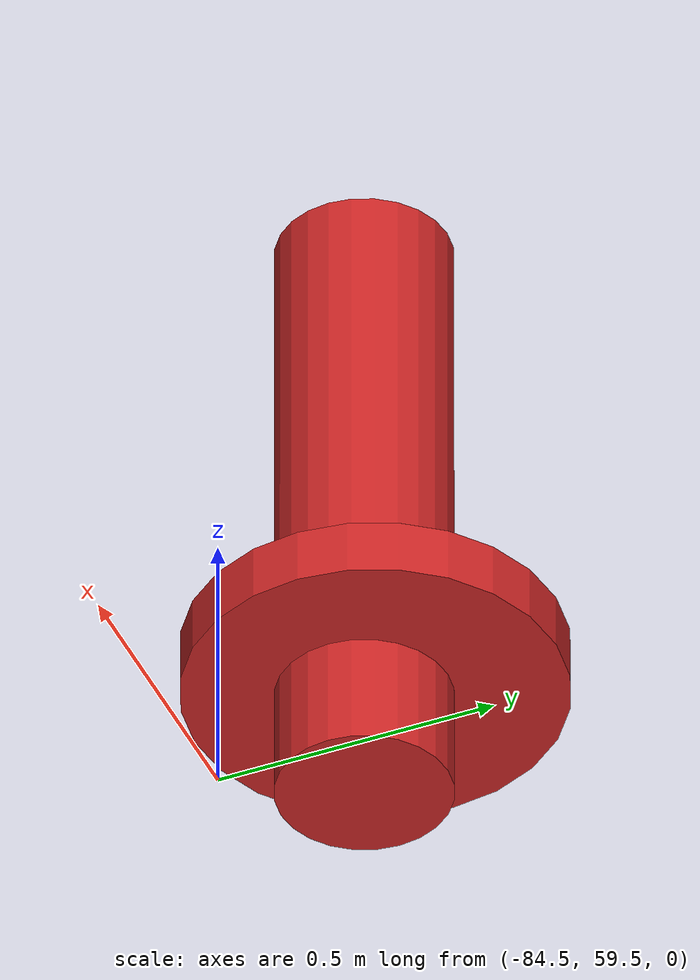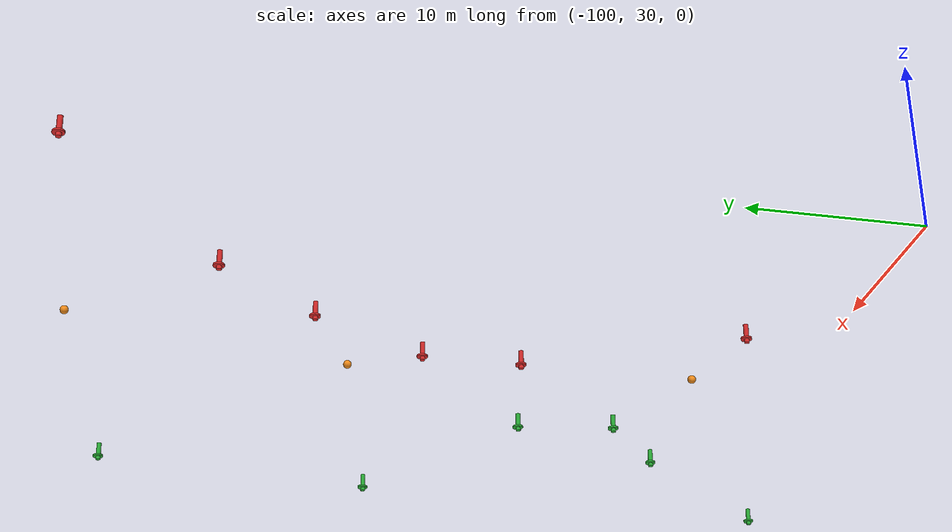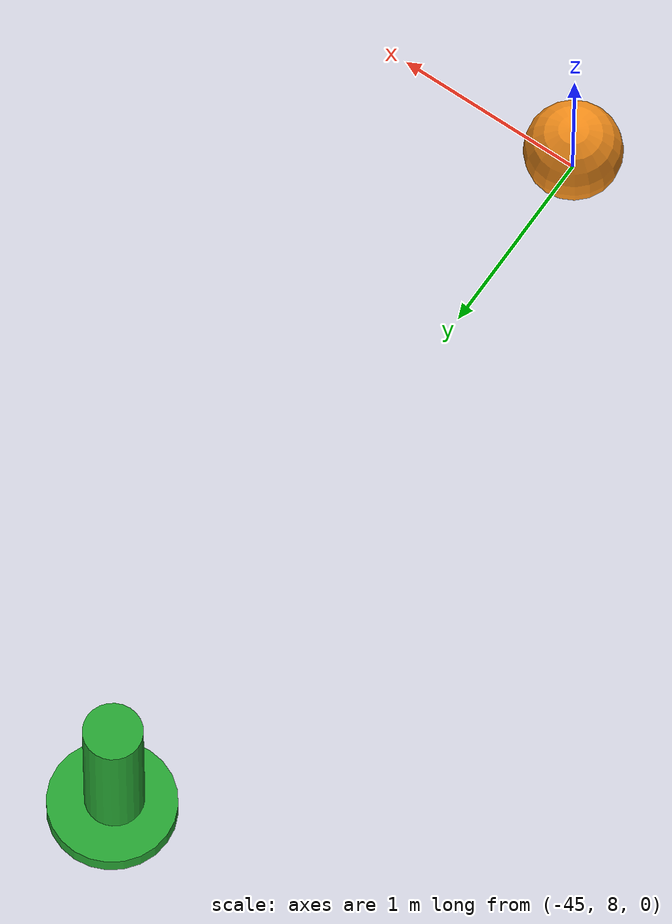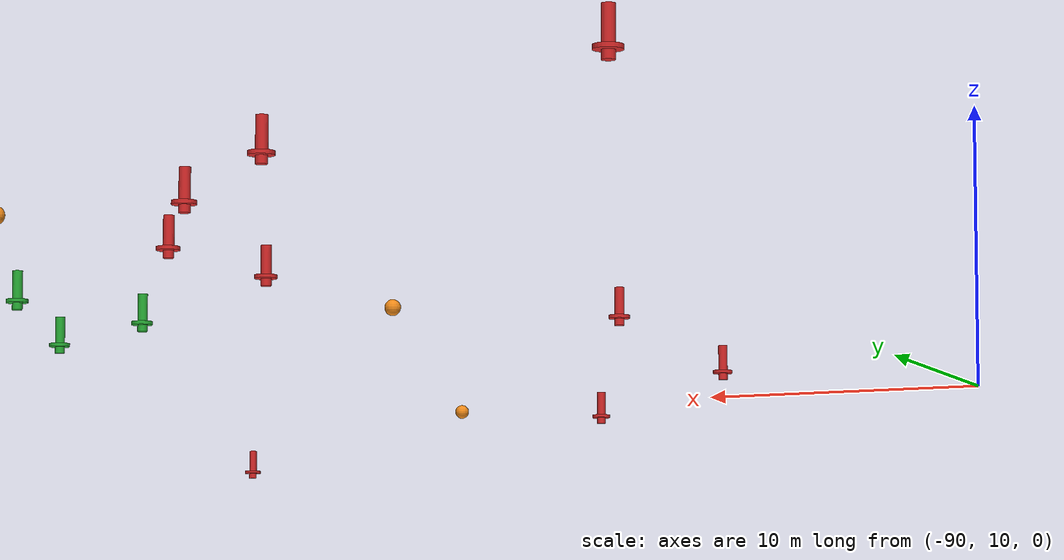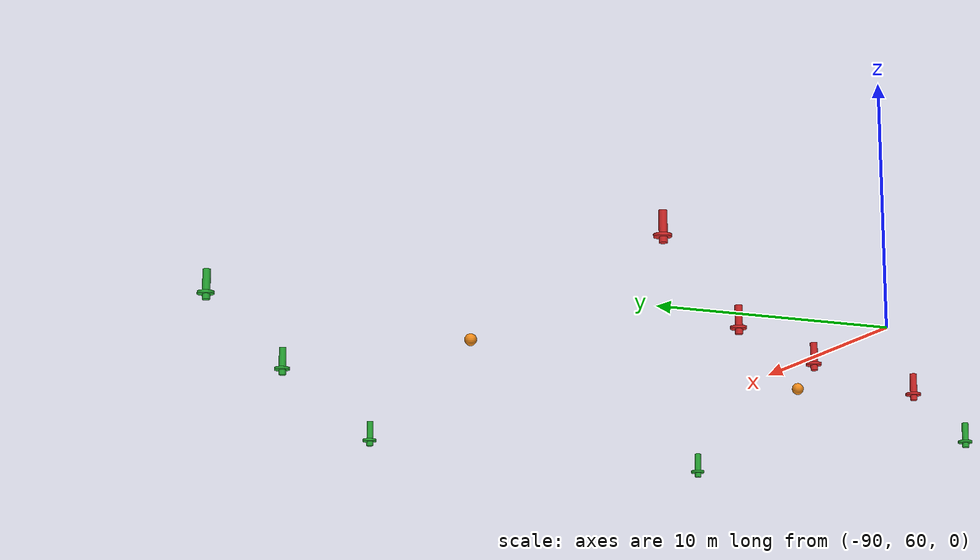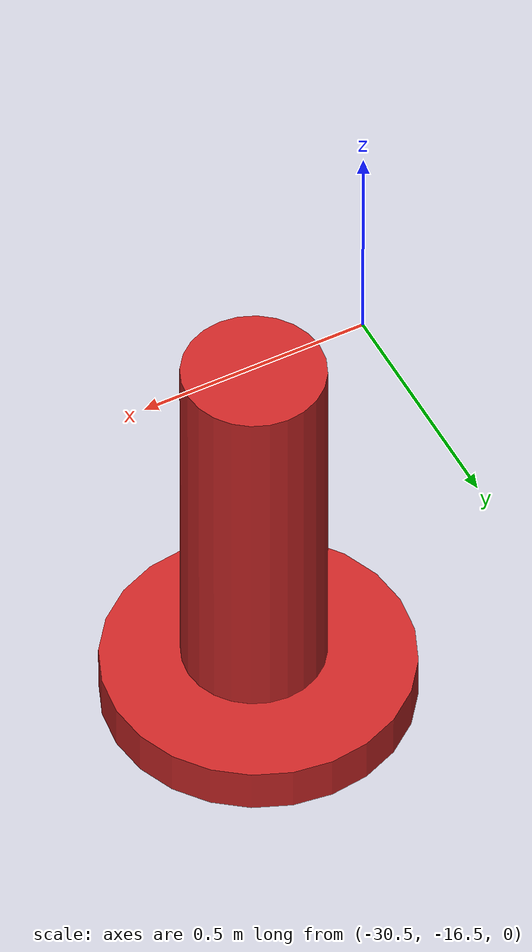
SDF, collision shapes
<?xml version="1.0"?>
<!-- Model for the short navigation course -->
<sdf version="1.6">
  <model name="short_navigation_course_0">

    <!-- Path -->

    <include>
      <name>red_buoy_0</name>
      <pose>0 -20 0 0 0 0</pose>
      <uri>https://fuel.gazebosim.org/1.0/openrobotics/models/mb_marker_buoy_red</uri>

      <plugin name="vrx::PolyhedraBuoyancyDrag"
              filename="libPolyhedraBuoyancyDrag.so">
        <fluid_density>1000</fluid_density>
        <fluid_level>0.0</fluid_level>
        <linear_drag>25.0</linear_drag>
        <angular_drag>2.0</angular_drag>
        <buoyancy name="collision_outer">
          <link_name>link</link_name>
          <pose>0 0 -0.3 0 0 0</pose>
          <geometry>
            <cylinder>
              <radius>0.325</radius>
              <length>0.1</length>
            </cylinder>
          </geometry>
        </buoyancy>
        <wavefield>
          <topic>/vrx/wavefield/parameters</topic>
        </wavefield>
      </plugin>

    </include>

    <include>
      <name>red_buoy_1</name>
      <pose>-30 -16 0 0 0 0</pose>
      <uri>https://fuel.gazebosim.org/1.0/openrobotics/models/mb_marker_buoy_red</uri>

      <plugin name="vrx::PolyhedraBuoyancyDrag"
              filename="libPolyhedraBuoyancyDrag.so">
        <fluid_density>1000</fluid_density>
        <fluid_level>0.0</fluid_level>
        <linear_drag>25.0</linear_drag>
        <angular_drag>2.0</angular_drag>
        <buoyancy name="collision_outer">
          <link_name>link</link_name>
          <pose>0 0 -0.3 0 0 0</pose>
          <geometry>
            <cylinder>
              <radius>0.325</radius>
              <length>0.1</length>
            </cylinder>
          </geometry>
        </buoyancy>
        <wavefield>
          <topic>/vrx/wavefield/parameters</topic>
        </wavefield>
      </plugin>

    </include>

    <include>
      <name>red_buoy_2</name>
      <pose>-53 -8 0 0 0 0</pose>
      <uri>https://fuel.gazebosim.org/1.0/openrobotics/models/mb_marker_buoy_red</uri>

      <plugin name="vrx::PolyhedraBuoyancyDrag"
              filename="libPolyhedraBuoyancyDrag.so">
        <fluid_density>1000</fluid_density>
        <fluid_level>0.0</fluid_level>
        <linear_drag>25.0</linear_drag>
        <angular_drag>2.0</angular_drag>
        <buoyancy name="collision_outer">
          <link_name>link</link_name>
          <pose>0 0 -0.3 0 0 0</pose>
          <geometry>
            <cylinder>
              <radius>0.325</radius>
              <length>0.1</length>
            </cylinder>
          </geometry>
        </buoyancy>
        <wavefield>
          <topic>/vrx/wavefield/parameters</topic>
        </wavefield>
      </plugin>

    </include>

    <include>
      <name>red_buoy_3</name>
      <pose>-75 8 0 0 0 0</pose>
      <uri>https://fuel.gazebosim.org/1.0/openrobotics/models/mb_marker_buoy_red</uri>

      <plugin name="vrx::PolyhedraBuoyancyDrag"
              filename="libPolyhedraBuoyancyDrag.so">
        <fluid_density>1000</fluid_density>
        <fluid_level>0.0</fluid_level>
        <linear_drag>25.0</linear_drag>
        <angular_drag>2.0</angular_drag>
        <buoyancy name="collision_outer">
          <link_name>link</link_name>
          <pose>0 0 -0.3 0 0 0</pose>
          <geometry>
            <cylinder>
              <radius>0.325</radius>
              <length>0.1</length>
            </cylinder>
          </geometry>
        </buoyancy>
        <wavefield>
          <topic>/vrx/wavefield/parameters</topic>
        </wavefield>
      </plugin>

    </include>

    <include>
      <name>red_buoy_4</name>
      <pose>-84 20 0 0 0 0</pose>
      <uri>https://fuel.gazebosim.org/1.0/openrobotics/models/mb_marker_buoy_red</uri>

      <plugin name="vrx::PolyhedraBuoyancyDrag"
              filename="libPolyhedraBuoyancyDrag.so">
        <fluid_density>1000</fluid_density>
        <fluid_level>0.0</fluid_level>
        <linear_drag>25.0</linear_drag>
        <angular_drag>2.0</angular_drag>
        <buoyancy name="collision_outer">
          <link_name>link</link_name>
          <pose>0 0 -0.3 0 0 0</pose>
          <geometry>
            <cylinder>
              <radius>0.325</radius>
              <length>0.1</length>
            </cylinder>
          </geometry>
        </buoyancy>
        <wavefield>
          <topic>/vrx/wavefield/parameters</topic>
        </wavefield>
      </plugin>

    </include>

    <include>
      <name>red_buoy_5</name>
      <pose>-86 35 0 0 0 0</pose>
      <uri>https://fuel.gazebosim.org/1.0/openrobotics/models/mb_marker_buoy_red</uri>

      <plugin name="vrx::PolyhedraBuoyancyDrag"
              filename="libPolyhedraBuoyancyDrag.so">
        <fluid_density>1000</fluid_density>
        <fluid_level>0.0</fluid_level>
        <linear_drag>25.0</linear_drag>
        <angular_drag>2.0</angular_drag>
        <buoyancy name="collision_outer">
          <link_name>link</link_name>
          <pose>0 0 -0.3 0 0 0</pose>
          <geometry>
            <cylinder>
              <radius>0.325</radius>
              <length>0.1</length>
            </cylinder>
          </geometry>
        </buoyancy>
        <wavefield>
          <topic>/vrx/wavefield/parameters</topic>
        </wavefield>
      </plugin>

    </include>

    <include>
      <name>red_buoy_6</name>
      <pose>-80 53 0 0 0 0</pose>
      <uri>https://fuel.gazebosim.org/1.0/openrobotics/models/mb_marker_buoy_red</uri>

      <plugin name="vrx::PolyhedraBuoyancyDrag"
              filename="libPolyhedraBuoyancyDrag.so">
        <fluid_density>1000</fluid_density>
        <fluid_level>0.0</fluid_level>
        <linear_drag>25.0</linear_drag>
        <angular_drag>2.0</angular_drag>
        <buoyancy name="collision_outer">
          <link_name>link</link_name>
          <pose>0 0 -0.3 0 0 0</pose>
          <geometry>
            <cylinder>
              <radius>0.325</radius>
              <length>0.1</length>
            </cylinder>
          </geometry>
        </buoyancy>
        <wavefield>
          <topic>/vrx/wavefield/parameters</topic>
        </wavefield>
      </plugin>

    </include>

    <include>
      <name>red_buoy_7</name>
      <pose>-89 66 0 0 0 0</pose>
      <uri>https://fuel.gazebosim.org/1.0/openrobotics/models/mb_marker_buoy_red</uri>

      <plugin name="vrx::PolyhedraBuoyancyDrag"
              filename="libPolyhedraBuoyancyDrag.so">
        <fluid_density>1000</fluid_density>
        <fluid_level>0.0</fluid_level>
        <linear_drag>25.0</linear_drag>
        <angular_drag>2.0</angular_drag>
        <buoyancy name="collision_outer">
          <link_name>link</link_name>
          <pose>0 0 -0.3 0 0 0</pose>
          <geometry>
            <cylinder>
              <radius>0.325</radius>
              <length>0.1</length>
            </cylinder>
          </geometry>
        </buoyancy>
        <wavefield>
          <topic>/vrx/wavefield/parameters</topic>
        </wavefield>
      </plugin>

    </include>

    <include>
      <name>red_buoy_8</name>
      <pose>-101 75 0 0 0 0</pose>
      <uri>https://fuel.gazebosim.org/1.0/openrobotics/models/mb_marker_buoy_red</uri>

      <plugin name="vrx::PolyhedraBuoyancyDrag"
              filename="libPolyhedraBuoyancyDrag.so">
        <fluid_density>1000</fluid_density>
        <fluid_level>0.0</fluid_level>
        <linear_drag>25.0</linear_drag>
        <angular_drag>2.0</angular_drag>
        <buoyancy name="collision_outer">
          <link_name>link</link_name>
          <pose>0 0 -0.3 0 0 0</pose>
          <geometry>
            <cylinder>
              <radius>0.325</radius>
              <length>0.1</length>
            </cylinder>
          </geometry>
        </buoyancy>
        <wavefield>
          <topic>/vrx/wavefield/parameters</topic>
        </wavefield>
      </plugin>

    </include>

    <include>
      <name>red_buoy_9</name>
      <pose>-84 60 0 0 0 0</pose>
      <uri>https://fuel.gazebosim.org/1.0/openrobotics/models/mb_marker_buoy_red</uri>

      <plugin name="vrx::PolyhedraBuoyancyDrag"
              filename="libPolyhedraBuoyancyDrag.so">
        <fluid_density>1000</fluid_density>
        <fluid_level>0.0</fluid_level>
        <linear_drag>25.0</linear_drag>
        <angular_drag>2.0</angular_drag>
        <buoyancy name="collision_outer">
          <link_name>link</link_name>
          <pose>0 0 -0.3 0 0 0</pose>
          <geometry>
            <cylinder>
              <radius>0.325</radius>
              <length>0.1</length>
            </cylinder>
          </geometry>
        </buoyancy>
        <wavefield>
          <topic>/vrx/wavefield/parameters</topic>
        </wavefield>
      </plugin>

    </include>

    <include>
      <name>red_buoy_10</name>
      <pose>-80 47   0 0 0 0</pose>
      <uri>https://fuel.gazebosim.org/1.0/openrobotics/models/mb_marker_buoy_red</uri>

      <plugin name="vrx::PolyhedraBuoyancyDrag"
              filename="libPolyhedraBuoyancyDrag.so">
        <fluid_density>1000</fluid_density>
        <fluid_level>0.0</fluid_level>
        <linear_drag>25.0</linear_drag>
        <angular_drag>2.0</angular_drag>
        <buoyancy name="collision_outer">
          <link_name>link</link_name>
          <pose>0 0 -0.3 0 0 0</pose>
          <geometry>
            <cylinder>
              <radius>0.325</radius>
              <length>0.1</length>
            </cylinder>
          </geometry>
        </buoyancy>
        <wavefield>
          <topic>/vrx/wavefield/parameters</topic>
        </wavefield>
      </plugin>

    </include>

     <include>
      <name>green_buoy_0</name>
      <pose>0 0 0 0 0 0</pose>
      <uri>https://fuel.gazebosim.org/1.0/openrobotics/models/mb_marker_buoy_green</uri>

      <plugin name="vrx::PolyhedraBuoyancyDrag"
              filename="libPolyhedraBuoyancyDrag.so">
        <fluid_density>1000</fluid_density>
        <fluid_level>0.0</fluid_level>
        <linear_drag>25.0</linear_drag>
        <angular_drag>2.0</angular_drag>
        <buoyancy name="collision_outer">
          <link_name>link</link_name>
          <pose>0 0 -0.3 0 0 0</pose>
          <geometry>
            <cylinder>
              <radius>0.325</radius>
              <length>0.1</length>
            </cylinder>
          </geometry>
        </buoyancy>
        <wavefield>
          <topic>/vrx/wavefield/parameters</topic>
        </wavefield>
      </plugin>

    </include>

    <include>
      <name>green_buoy_1</name>
      <pose>-29 4 0 0 0 0</pose>
      <uri>https://fuel.gazebosim.org/1.0/openrobotics/models/mb_marker_buoy_green</uri>

      <plugin name="vrx::PolyhedraBuoyancyDrag"
              filename="libPolyhedraBuoyancyDrag.so">
        <fluid_density>1000</fluid_density>
        <fluid_level>0.0</fluid_level>
        <linear_drag>25.0</linear_drag>
        <angular_drag>2.0</angular_drag>
        <buoyancy name="collision_outer">
          <link_name>link</link_name>
          <pose>0 0 -0.3 0 0 0</pose>
          <geometry>
            <cylinder>
              <radius>0.325</radius>
              <length>0.1</length>
            </cylinder>
          </geometry>
        </buoyancy>
        <wavefield>
          <topic>/vrx/wavefield/parameters</topic>
        </wavefield>
      </plugin>

    </include>

    <include>
      <name>green_buoy_2</name>
      <pose>-45 12 0 0 0 0</pose>
      <uri>https://fuel.gazebosim.org/1.0/openrobotics/models/mb_marker_buoy_green</uri>

      <plugin name="vrx::PolyhedraBuoyancyDrag"
              filename="libPolyhedraBuoyancyDrag.so">
        <fluid_density>1000</fluid_density>
        <fluid_level>0.0</fluid_level>
        <linear_drag>25.0</linear_drag>
        <angular_drag>2.0</angular_drag>
        <buoyancy name="collision_outer">
          <link_name>link</link_name>
          <pose>0 0 -0.3 0 0 0</pose>
          <geometry>
            <cylinder>
              <radius>0.325</radius>
              <length>0.1</length>
            </cylinder>
          </geometry>
        </buoyancy>
        <wavefield>
          <topic>/vrx/wavefield/parameters</topic>
        </wavefield>
      </plugin>

    </include>

    <include>
      <name>green_buoy_3</name>
      <pose>-58 25 0 0 0 0</pose>
      <uri>https://fuel.gazebosim.org/1.0/openrobotics/models/mb_marker_buoy_green</uri>

      <plugin name="vrx::PolyhedraBuoyancyDrag"
              filename="libPolyhedraBuoyancyDrag.so">
        <fluid_density>1000</fluid_density>
        <fluid_level>0.0</fluid_level>
        <linear_drag>25.0</linear_drag>
        <angular_drag>2.0</angular_drag>
        <buoyancy name="collision_outer">
          <link_name>link</link_name>
          <pose>0 0 -0.3 0 0 0</pose>
          <geometry>
            <cylinder>
              <radius>0.325</radius>
              <length>0.1</length>
            </cylinder>
          </geometry>
        </buoyancy>
        <wavefield>
          <topic>/vrx/wavefield/parameters</topic>
        </wavefield>
      </plugin>

    </include>

    <include>
      <name>green_buoy_4</name>
      <pose>-67 35 0 0 0 0</pose>
      <uri>https://fuel.gazebosim.org/1.0/openrobotics/models/mb_marker_buoy_green</uri>

      <plugin name="vrx::PolyhedraBuoyancyDrag"
              filename="libPolyhedraBuoyancyDrag.so">
        <fluid_density>1000</fluid_density>
        <fluid_level>0.0</fluid_level>
        <linear_drag>25.0</linear_drag>
        <angular_drag>2.0</angular_drag>
        <buoyancy name="collision_outer">
          <link_name>link</link_name>
          <pose>0 0 -0.3 0 0 0</pose>
          <geometry>
            <cylinder>
              <radius>0.325</radius>
              <length>0.1</length>
            </cylinder>
          </geometry>
        </buoyancy>
        <wavefield>
          <topic>/vrx/wavefield/parameters</topic>
        </wavefield>
      </plugin>

    </include>

    <include>
      <name>green_buoy_5</name>
      <pose>-59 53 0 0 0 0</pose>
      <uri>https://fuel.gazebosim.org/1.0/openrobotics/models/mb_marker_buoy_green</uri>

      <plugin name="vrx::PolyhedraBuoyancyDrag"
              filename="libPolyhedraBuoyancyDrag.so">
        <fluid_density>1000</fluid_density>
        <fluid_level>0.0</fluid_level>
        <linear_drag>25.0</linear_drag>
        <angular_drag>2.0</angular_drag>
        <buoyancy name="collision_outer">
          <link_name>link</link_name>
          <pose>0 0 -0.3 0 0 0</pose>
          <geometry>
            <cylinder>
              <radius>0.325</radius>
              <length>0.1</length>
            </cylinder>
          </geometry>
        </buoyancy>
        <wavefield>
          <topic>/vrx/wavefield/parameters</topic>
        </wavefield>
      </plugin>

    </include>

    <include>
      <name>green_buoy_6</name>
      <pose>-61 71 0 0 0 0</pose>
      <uri>https://fuel.gazebosim.org/1.0/openrobotics/models/mb_marker_buoy_green</uri>

      <plugin name="vrx::PolyhedraBuoyancyDrag"
              filename="libPolyhedraBuoyancyDrag.so">
        <fluid_density>1000</fluid_density>
        <fluid_level>0.0</fluid_level>
        <linear_drag>25.0</linear_drag>
        <angular_drag>2.0</angular_drag>
        <buoyancy name="collision_outer">
          <link_name>link</link_name>
          <pose>0 0 -0.3 0 0 0</pose>
          <geometry>
            <cylinder>
              <radius>0.325</radius>
              <length>0.1</length>
            </cylinder>
          </geometry>
        </buoyancy>
        <wavefield>
          <topic>/vrx/wavefield/parameters</topic>
        </wavefield>
      </plugin>

    </include>

    <include>
      <name>green_buoy_7</name>
      <pose>-75 80 0 0 0 0</pose>
      <uri>https://fuel.gazebosim.org/1.0/openrobotics/models/mb_marker_buoy_green</uri>

      <plugin name="vrx::PolyhedraBuoyancyDrag"
              filename="libPolyhedraBuoyancyDrag.so">
        <fluid_density>1000</fluid_density>
        <fluid_level>0.0</fluid_level>
        <linear_drag>25.0</linear_drag>
        <angular_drag>2.0</angular_drag>
        <buoyancy name="collision_outer">
          <link_name>link</link_name>
          <pose>0 0 -0.3 0 0 0</pose>
          <geometry>
            <cylinder>
              <radius>0.325</radius>
              <length>0.1</length>
            </cylinder>
          </geometry>
        </buoyancy>
        <wavefield>
          <topic>/vrx/wavefield/parameters</topic>
        </wavefield>
      </plugin>

    </include>

    <include>
      <name>green_buoy_8</name>
      <pose>-87 87 0 0 0 0</pose>
      <uri>https://fuel.gazebosim.org/1.0/openrobotics/models/mb_marker_buoy_green</uri>

      <plugin name="vrx::PolyhedraBuoyancyDrag"
              filename="libPolyhedraBuoyancyDrag.so">
        <fluid_density>1000</fluid_density>
        <fluid_level>0.0</fluid_level>
        <linear_drag>25.0</linear_drag>
        <angular_drag>2.0</angular_drag>
        <buoyancy name="collision_outer">
          <link_name>link</link_name>
          <pose>0 0 -0.3 0 0 0</pose>
          <geometry>
            <cylinder>
              <radius>0.325</radius>
              <length>0.1</length>
            </cylinder>
          </geometry>
        </buoyancy>
        <wavefield>
          <topic>/vrx/wavefield/parameters</topic>
        </wavefield>
      </plugin>

    </include>

    <include>
      <name>green_buoy_9</name>
      <pose>-72 39 0 0 0 0</pose>
      <uri>https://fuel.gazebosim.org/1.0/openrobotics/models/mb_marker_buoy_green</uri>

      <plugin name="vrx::PolyhedraBuoyancyDrag"
              filename="libPolyhedraBuoyancyDrag.so">
        <fluid_density>1000</fluid_density>
        <fluid_level>0.0</fluid_level>
        <linear_drag>25.0</linear_drag>
        <angular_drag>2.0</angular_drag>
        <buoyancy name="collision_outer">
          <link_name>link</link_name>
          <pose>0 0 -0.3 0 0 0</pose>
          <geometry>
            <cylinder>
              <radius>0.325</radius>
              <length>0.1</length>
            </cylinder>
          </geometry>
        </buoyancy>
        <wavefield>
          <topic>/vrx/wavefield/parameters</topic>
        </wavefield>
      </plugin>

    </include>

    <include>
      <name>green_buoy_10</name>
      <pose>-71 45 0 0 0 0</pose>
      <uri>https://fuel.gazebosim.org/1.0/openrobotics/models/mb_marker_buoy_green</uri>

      <plugin name="vrx::PolyhedraBuoyancyDrag"
              filename="libPolyhedraBuoyancyDrag.so">
        <fluid_density>1000</fluid_density>
        <fluid_level>0.0</fluid_level>
        <linear_drag>25.0</linear_drag>
        <angular_drag>2.0</angular_drag>
        <buoyancy name="collision_outer">
          <link_name>link</link_name>
          <pose>0 0 -0.3 0 0 0</pose>
          <geometry>
            <cylinder>
              <radius>0.325</radius>
              <length>0.1</length>
            </cylinder>
          </geometry>
        </buoyancy>
        <wavefield>
          <topic>/vrx/wavefield/parameters</topic>
        </wavefield>
      </plugin>

    </include>

    <include>
      <name>yellow_obstacle_0</name>
      <pose>-45 8 0.2 0 0 0</pose>
      <uri>https://fuel.gazebosim.org/1.0/openrobotics/models/mb_round_buoy_orange</uri>
      <plugin name="vrx::PolyhedraBuoyancyDrag"
              filename="libPolyhedraBuoyancyDrag.so">
        <fluid_density>1000</fluid_density>
        <fluid_level>0.0</fluid_level>
        <linear_drag>25.0</linear_drag>
        <angular_drag>2.0</angular_drag>
        <buoyancy name="collision_outer">
          <link_name>link</link_name>
          <pose>0 0 -0.3 0 0 0</pose>
          <geometry>
            <cylinder>
              <radius>0.325</radius>
              <length>0.1</length>
            </cylinder>
          </geometry>
        </buoyancy>
        <wavefield>
          <topic>/vrx/wavefield/parameters</topic>
        </wavefield>
      </plugin>

    </include>

    <include>
      <name>yellow_obstacle_1</name>
      <pose>-69 7 0.2 0 0 0</pose>
      <uri>https://fuel.gazebosim.org/1.0/openrobotics/models/mb_round_buoy_orange</uri>
      <plugin name="vrx::PolyhedraBuoyancyDrag"
              filename="libPolyhedraBuoyancyDrag.so">
        <fluid_density>1000</fluid_density>
        <fluid_level>0.0</fluid_level>
        <linear_drag>25.0</linear_drag>
        <angular_drag>2.0</angular_drag>
        <buoyancy name="collision_outer">
          <link_name>link</link_name>
          <pose>0 0 -0.3 0 0 0</pose>
          <geometry>
            <cylinder>
              <radius>0.325</radius>
              <length>0.1</length>
            </cylinder>
          </geometry>
        </buoyancy>
        <wavefield>
          <topic>/vrx/wavefield/parameters</topic>
        </wavefield>
      </plugin>

    </include>

    <include>
      <name>yellow_obstacle_2</name>
      <pose>-79 36 0.2 0 0 0</pose>
      <uri>https://fuel.gazebosim.org/1.0/openrobotics/models/mb_round_buoy_orange</uri>
      <plugin name="vrx::PolyhedraBuoyancyDrag"
              filename="libPolyhedraBuoyancyDrag.so">
        <fluid_density>1000</fluid_density>
        <fluid_level>0.0</fluid_level>
        <linear_drag>25.0</linear_drag>
        <angular_drag>2.0</angular_drag>
        <buoyancy name="collision_outer">
          <link_name>link</link_name>
          <pose>0 0 -0.3 0 0 0</pose>
          <geometry>
            <cylinder>
              <radius>0.325</radius>
              <length>0.1</length>
            </cylinder>
          </geometry>
        </buoyancy>
        <wavefield>
          <topic>/vrx/wavefield/parameters</topic>
        </wavefield>
      </plugin>

    </include>

    <include>
      <name>yellow_obstacle_3</name>
      <pose>-77 57 0.2 0 0 0</pose>
      <uri>https://fuel.gazebosim.org/1.0/openrobotics/models/mb_round_buoy_orange</uri>
      <plugin name="vrx::PolyhedraBuoyancyDrag"
              filename="libPolyhedraBuoyancyDrag.so">
        <fluid_density>1000</fluid_density>
        <fluid_level>0.0</fluid_level>
        <linear_drag>25.0</linear_drag>
        <angular_drag>2.0</angular_drag>
        <buoyancy name="collision_outer">
          <link_name>link</link_name>
          <pose>0 0 -0.3 0 0 0</pose>
          <geometry>
            <cylinder>
              <radius>0.325</radius>
              <length>0.1</length>
            </cylinder>
          </geometry>
        </buoyancy>
        <wavefield>
          <topic>/vrx/wavefield/parameters</topic>
        </wavefield>
      </plugin>

    </include>

    <include>
      <name>yellow_obstacle_4</name>
      <pose>-81 74 0.2 0 0 0</pose>
      <uri>https://fuel.gazebosim.org/1.0/openrobotics/models/mb_round_buoy_orange</uri>
      <plugin name="vrx::PolyhedraBuoyancyDrag"
              filename="libPolyhedraBuoyancyDrag.so">
        <fluid_density>1000</fluid_density>
        <fluid_level>0.0</fluid_level>
        <linear_drag>25.0</linear_drag>
        <angular_drag>2.0</angular_drag>
        <buoyancy name="collision_outer">
          <link_name>link</link_name>
          <pose>0 0 -0.3 0 0 0</pose>
          <geometry>
            <cylinder>
              <radius>0.325</radius>
              <length>0.1</length>
            </cylinder>
          </geometry>
        </buoyancy>
        <wavefield>
          <topic>/vrx/wavefield/parameters</topic>
        </wavefield>
      </plugin>

    </include>

  </model>

</sdf>

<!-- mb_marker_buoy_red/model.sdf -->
<sdf version="1.6">
  <model name="mb_marker_buoy_red">
    <link name="link">
      <inertial>
        <pose>0 0 -2 0 0 0</pose>
        <!-- Mass determined based on buoyancy geometry so object
             floats at mid-point of sphere -->
        <mass>20</mass>
        <!-- Mark only - based on cylinder -->
        <inertia>
          <ixx>1.0</ixx>
          <ixy>0</ixy>
          <ixz>0</ixz>
          <iyy>1.0</iyy>
          <iyz>0</iyz>
          <izz>0.1</izz>
        </inertia>
      </inertial>
      <collision name="collision_inner">
        <pose>0 -0.02 0.02 0 0 0</pose>
        <geometry>
          <cylinder>
            <radius>0.15</radius>
            <length>1.15</length>
          </cylinder>
        </geometry>
      </collision>
      <collision name="collision_outer">
        <pose>0 0 -0.3 0 0 0</pose>
        <geometry>
          <cylinder>
            <radius>0.325</radius>
            <length>0.1</length>
          </cylinder>
        </geometry>
      </collision>
      <visual name="visual">
        <pose>0 0 0 1.57079 0 0</pose>
        <geometry>
	        <mesh><uri>model://mb_marker_buoy_red/meshes/mb_marker_buoy.dae</uri></mesh>
        </geometry>
        <material>
          <script>
            <uri>model://mb_marker_buoy_red/materials/scripts/mb_marker_buoy.material</uri>
            <name>mb_marker_buoy/Red</name>
          </script>
        </material>
      </visual>
    </link>
    <plugin name="BuoyancyPlugin" filename="libbuoyancy_gazebo_plugin.so">
      <wave_model>ocean_waves</wave_model>
      <fluid_density>1000</fluid_density>
      <fluid_level>0.0</fluid_level>
      <linear_drag>25.0</linear_drag>
      <angular_drag>2.0</angular_drag>
      <buoyancy name="buoyancy_sphere">
        <link_name>link</link_name>
        <pose>0 0 -0.12 0 0 0</pose>
        <geometry>
          <sphere>
            <radius>0.325</radius>
          </sphere>
        </geometry>
      </buoyancy>
    </plugin>
  </model>
</sdf>

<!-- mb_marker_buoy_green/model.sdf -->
<sdf version="1.6">
  <model name="mb_marker_buoy_green">
    <link name="link">
      <inertial>
        <pose>0 0 -2 0 0 0</pose>
        <!-- Mass determined based on buoyancy geometry so object
             floats at mid-point of sphere -->
        <mass>20</mass>
        <!-- Mark only - based on cylinder -->
        <inertia>
          <ixx>1.0</ixx>
          <ixy>0</ixy>
          <ixz>0</ixz>
          <iyy>1.0</iyy>
          <iyz>0</iyz>
          <izz>0.1</izz>
        </inertia>
      </inertial>
      <collision name="collision_inner">
        <pose>0 -0.02 0.02 0 0 0</pose>
        <geometry>
          <cylinder>
            <radius>0.15</radius>
            <length>1.15</length>
          </cylinder>
        </geometry>
      </collision>
      <collision name="collision_outer">
        <pose>0 0 -0.3 0 0 0</pose>
        <geometry>
          <cylinder>
            <radius>0.325</radius>
            <length>0.1</length>
          </cylinder>
        </geometry>
      </collision>
      <visual name="visual">
        <pose>0 0 0 1.57079 0 0</pose>
        <geometry>
	        <mesh><uri>model://mb_marker_buoy_red/meshes/mb_marker_buoy.dae</uri></mesh>
        </geometry>
        <material>
          <script>
            <uri>model://mb_marker_buoy_green/materials/scripts/mb_marker_buoy.material</uri>
            <name>mb_marker_buoy/Green</name>
          </script>
        </material>
      </visual>
    </link>
    <plugin name="BuoyancyPlugin" filename="libbuoyancy_gazebo_plugin.so">
      <wave_model>ocean_waves</wave_model>
      <fluid_density>1000</fluid_density>
      <fluid_level>0.0</fluid_level>
      <linear_drag>25.0</linear_drag>
      <angular_drag>2.0</angular_drag>
      <buoyancy name="buoyancy_sphere">
        <link_name>link</link_name>
        <pose>0 0 -0.12 0 0 0</pose>
        <geometry>
          <sphere>
            <radius>0.325</radius>
          </sphere>
        </geometry>
      </buoyancy>
    </plugin>
  </model>
</sdf>

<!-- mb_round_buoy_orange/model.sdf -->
<sdf version="1.6">
  <model name="mb_round_buoy_orange">
    <link name="link">
      <inertial>
        <pose>0 0 -2 0 0 0</pose>
        <!-- Mass determined based on buoyancy geometry so object
             floats at mid-point of sphere -->
        <mass>3.5</mass>
        <!-- Mark only - based on cylinder -->
        <inertia>
          <ixx>1.0</ixx>
          <ixy>0</ixy>
          <ixz>0</ixz>
          <iyy>1.0</iyy>
          <iyz>0</iyz>
          <izz>0.1</izz>
        </inertia>
      </inertial>
      <collision name="collision">
        <geometry>
          <sphere>
            <radius>0.25</radius>
          </sphere>
        </geometry>
      </collision>
      <visual name="visual">
        <geometry>
	        <mesh><uri>model://mb_round_buoy_orange/meshes/mb_round_buoy.dae</uri></mesh>
        </geometry>
        <material>
          <script>
            <uri>model://mb_round_buoy_orange/materials/scripts/mb_round_buoy.material</uri>
            <name>mb_round_buoy/Orange</name>
          </script>
        </material>
      </visual>
    </link>
    <plugin name="BuoyancyPlugin" filename="libbuoyancy_gazebo_plugin.so">
      <wave_model>ocean_waves</wave_model>
      <fluid_density>1000</fluid_density>
      <fluid_level>0.0</fluid_level>
      <linear_drag>25.0</linear_drag>
      <angular_drag>2.0</angular_drag>
      <buoyancy name="buoyancy_sphere">
        <link_name>link</link_name>
        <pose>0 0 0.02 0 0 0</pose>
        <geometry>
          <sphere>
            <radius>0.235</radius>
          </sphere>
        </geometry>
      </buoyancy>
    </plugin>
  </model>
</sdf>
